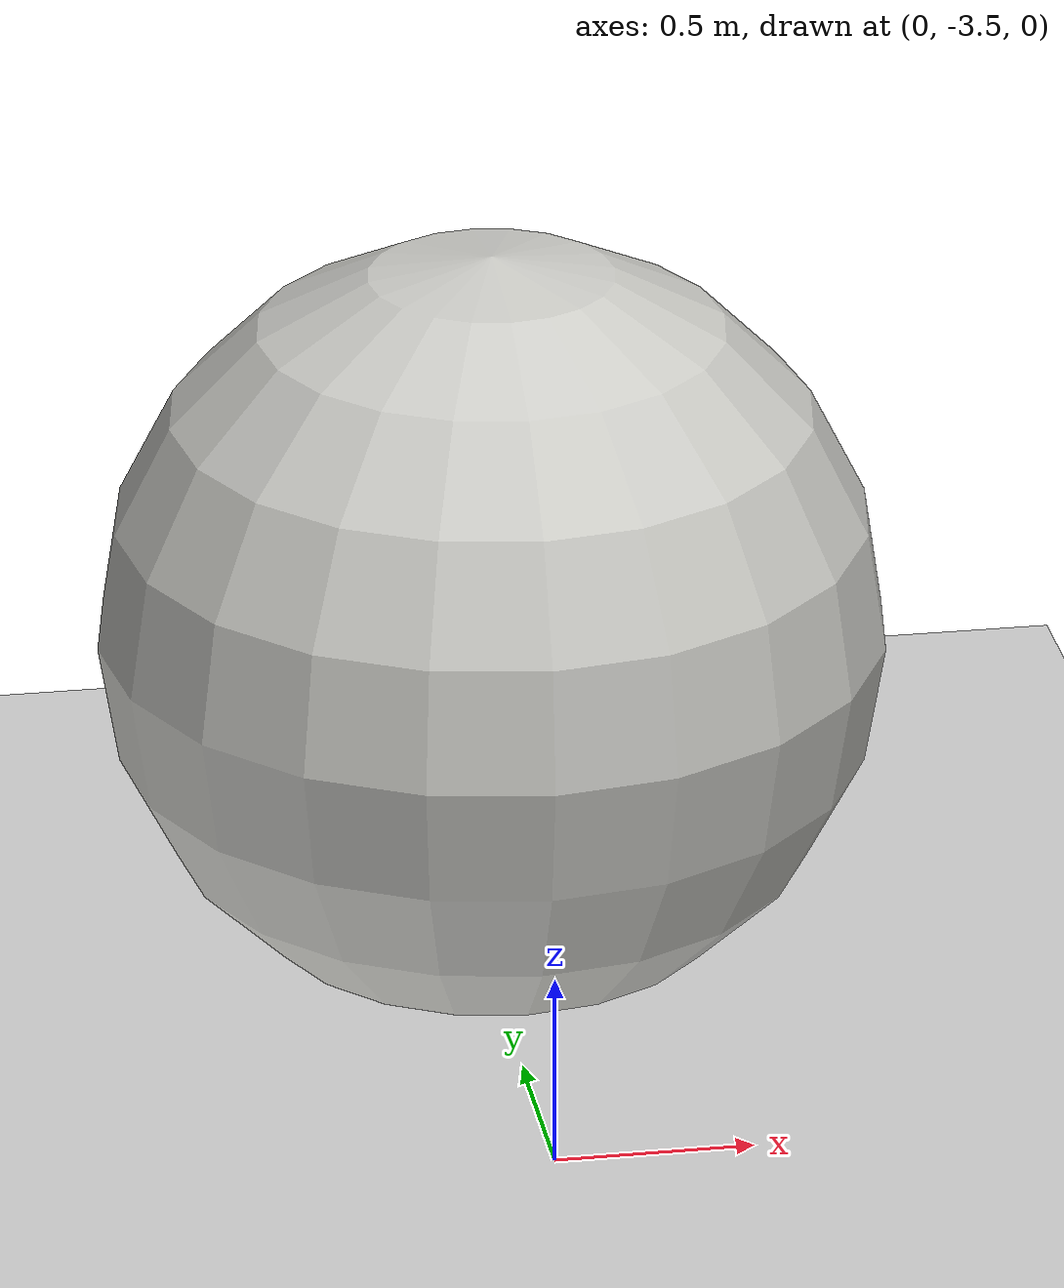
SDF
<?xml version="1.0" ?>
<sdf version="1.5">
  <world name="default">
    <!-- A global light source -->
    <include>
      <uri>model://sun</uri>
    </include>
    <!-- A ground plane -->
    <include>
      <uri>model://ground_plane</uri>
    </include>
    <!-- A sphere -->
    <model name="sphere">
      <pose>0 -2.5 1 0 0 0</pose>
      <link name="sphere_body">
        <inertial>
          <inertia>
            <ixx>1</ixx>
            <ixy>0</ixy>
            <ixz>0</ixz>
            <iyy>1</iyy>
            <iyz>0</iyz>
            <izz>1</izz>
          </inertia>
          <mass>1.0</mass>
        </inertial>
        <collision name="geom">
          <geometry>
            <sphere>
              <radius>1</radius>
            </sphere>
          </geometry>
        </collision>
        <visual name="visual">
          <geometry>
            <sphere>
              <radius>1</radius>
            </sphere>
          </geometry>
          <material>
            <script>
              <name>Gazebo/CeilingTiled</name>
            </script>
          </material>
        </visual>
      </link>
      <static>true</static>
    </model>
  </world>
</sdf>
